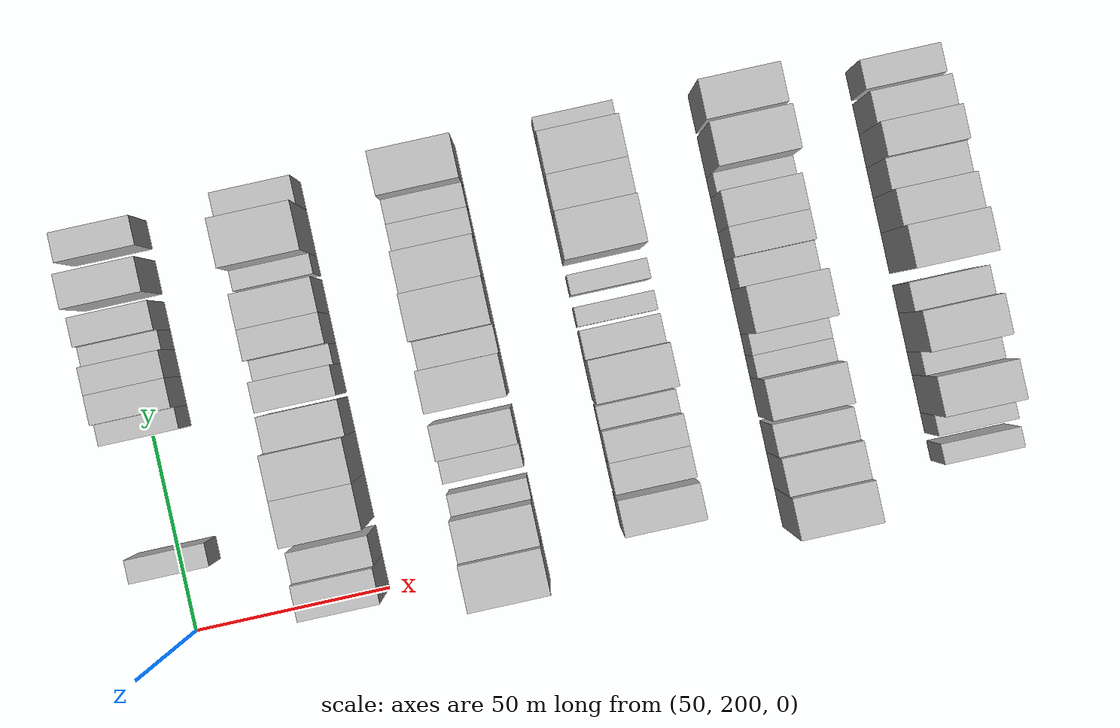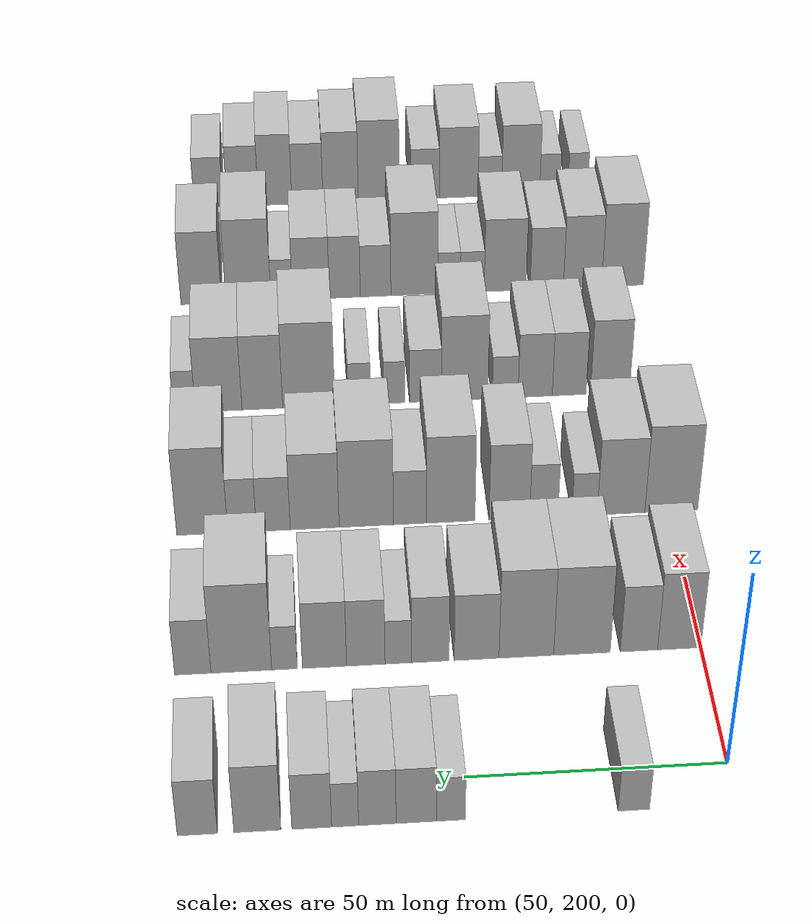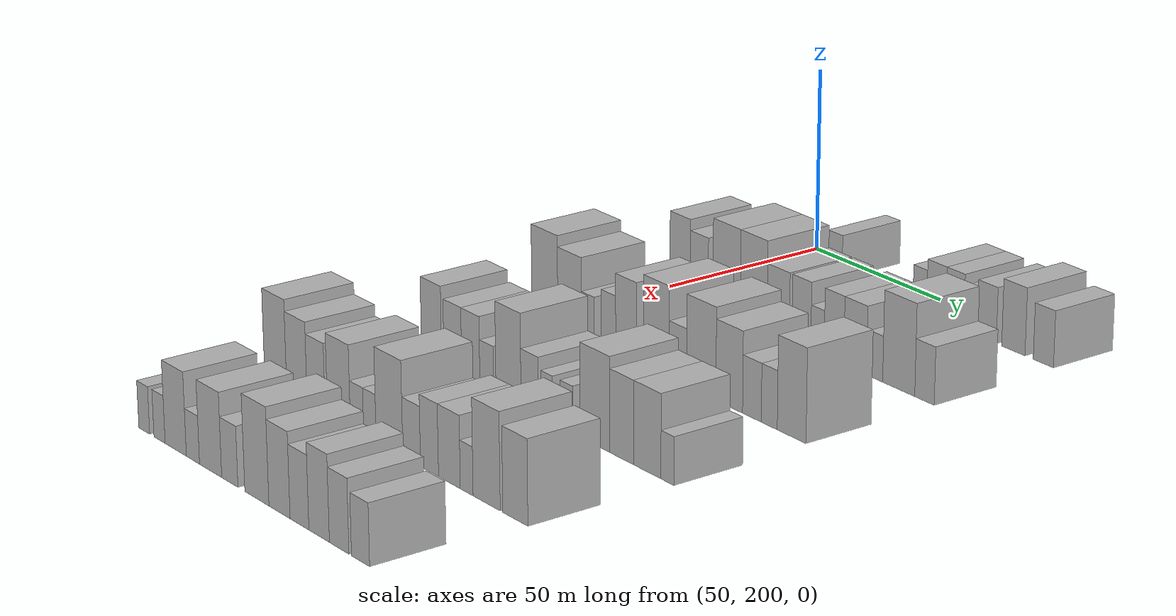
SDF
<sdf version="1.6">
 <world name="default">
  <model name="building_96">
   <static>1</static>
   <pose>50.0000 219.3409 0 0.000000 0.000000 0.000000</pose>
   <link name="link">
    <pose>0 0 6.00 0 0 0</pose>
    <collision name="collision"><geometry><box><size>20.0000 5.8726 12.0000</size></box></geometry></collision>
    <visual name="visual">
     <cast_shadows>0</cast_shadows>
     <geometry><box><size>20.0000 5.8726 12.0000</size></box></geometry>
     <material>
      <script>
       <uri>model://HANNAS_wall/materials/scripts</uri>
       <uri>model://HANNAS_wall/materials/textures</uri>
       <name>vrc/HANNAS_wall</name>
      </script>
     </material>
    </visual>
   </link>
  </model>
  <model name="building_97">
   <static>1</static>
   <pose>50.0000 253.3255 0 0.000000 0.000000 0.000000</pose>
   <link name="link">
    <pose>0 0 6.00 0 0 0</pose>
    <collision name="collision"><geometry><box><size>20.0000 5.3655 12.0000</size></box></geometry></collision>
    <visual name="visual">
     <cast_shadows>0</cast_shadows>
     <geometry><box><size>20.0000 5.3655 12.0000</size></box></geometry>
     <material>
      <script>
       <uri>model://HANNAS_wall/materials/scripts</uri>
       <uri>model://HANNAS_wall/materials/textures</uri>
       <name>vrc/HANNAS_wall</name>
      </script>
     </material>
    </visual>
   </link>
  </model>
  <model name="building_98">
   <static>1</static>
   <pose>50.0000 259.7184 0 0.000000 0.000000 0.000000</pose>
   <link name="link">
    <pose>0 0 7.50 0 0 0</pose>
    <collision name="collision"><geometry><box><size>20.0000 7.4203 15.0000</size></box></geometry></collision>
    <visual name="visual">
     <cast_shadows>0</cast_shadows>
     <geometry><box><size>20.0000 7.4203 15.0000</size></box></geometry>
     <material>
      <script>
       <uri>model://HANNAS_wall/materials/scripts</uri>
       <uri>model://HANNAS_wall/materials/textures</uri>
       <name>vrc/HANNAS_wall</name>
      </script>
     </material>
    </visual>
   </link>
  </model>
  <model name="building_99">
   <static>1</static>
   <pose>50.0000 266.8720 0 0.000000 0.000000 0.000000</pose>
   <link name="link">
    <pose>0 0 7.50 0 0 0</pose>
    <collision name="collision"><geometry><box><size>20.0000 6.8869 15.0000</size></box></geometry></collision>
    <visual name="visual">
     <cast_shadows>0</cast_shadows>
     <geometry><box><size>20.0000 6.8869 15.0000</size></box></geometry>
     <material>
      <script>
       <uri>model://HANNAS_wall/materials/scripts</uri>
       <uri>model://HANNAS_wall/materials/textures</uri>
       <name>vrc/HANNAS_wall</name>
      </script>
     </material>
    </visual>
   </link>
  </model>
  <model name="building_100">
   <static>1</static>
   <pose>50.0000 272.8001 0 0.000000 0.000000 0.000000</pose>
   <link name="link">
    <pose>0 0 6.00 0 0 0</pose>
    <collision name="collision"><geometry><box><size>20.0000 4.9694 12.0000</size></box></geometry></collision>
    <visual name="visual">
     <cast_shadows>0</cast_shadows>
     <geometry><box><size>20.0000 4.9694 12.0000</size></box></geometry>
     <material>
      <script>
       <uri>model://HANNAS_wall/materials/scripts</uri>
       <uri>model://HANNAS_wall/materials/textures</uri>
       <name>vrc/HANNAS_wall</name>
      </script>
     </material>
    </visual>
   </link>
  </model>
  <model name="building_101">
   <static>1</static>
   <pose>50.0000 278.9315 0 0.000000 0.000000 0.000000</pose>
   <link name="link">
    <pose>0 0 7.50 0 0 0</pose>
    <collision name="collision"><geometry><box><size>20.0000 7.2933 15.0000</size></box></geometry></collision>
    <visual name="visual">
     <cast_shadows>0</cast_shadows>
     <geometry><box><size>20.0000 7.2933 15.0000</size></box></geometry>
     <material>
      <script>
       <uri>model://HANNAS_wall/materials/scripts</uri>
       <uri>model://HANNAS_wall/materials/textures</uri>
       <name>vrc/HANNAS_wall</name>
      </script>
     </material>
    </visual>
   </link>
  </model>
  <model name="building_102">
   <static>1</static>
   <pose>50.0000 288.8823 0 0.000000 0.000000 0.000000</pose>
   <link name="link">
    <pose>0 0 9.00 0 0 0</pose>
    <collision name="collision"><geometry><box><size>20.0000 8.6085 18.0000</size></box></geometry></collision>
    <visual name="visual">
     <cast_shadows>0</cast_shadows>
     <geometry><box><size>20.0000 8.6085 18.0000</size></box></geometry>
     <material>
      <script>
       <uri>model://HANNAS_wall/materials/scripts</uri>
       <uri>model://HANNAS_wall/materials/textures</uri>
       <name>vrc/HANNAS_wall</name>
      </script>
     </material>
    </visual>
   </link>
  </model>
  <model name="building_103">
   <static>1</static>
   <pose>50.0000 299.8612 0 0.000000 0.000000 0.000000</pose>
   <link name="link">
    <pose>0 0 7.50 0 0 0</pose>
    <collision name="collision"><geometry><box><size>20.0000 7.3493 15.0000</size></box></geometry></collision>
    <visual name="visual">
     <cast_shadows>0</cast_shadows>
     <geometry><box><size>20.0000 7.3493 15.0000</size></box></geometry>
     <material>
      <script>
       <uri>model://HANNAS_wall/materials/scripts</uri>
       <uri>model://HANNAS_wall/materials/textures</uri>
       <name>vrc/HANNAS_wall</name>
      </script>
     </material>
    </visual>
   </link>
  </model>
  <model name="building_219">
   <static>1</static>
   <pose>90.0000 204.3901 0 0.000000 0.000000 0.000000</pose>
   <link name="link">
    <pose>0 0 10.50 0 0 0</pose>
    <collision name="collision"><geometry><box><size>20.0000 8.6976 21.0000</size></box></geometry></collision>
    <visual name="visual">
     <cast_shadows>0</cast_shadows>
     <geometry><box><size>20.0000 8.6976 21.0000</size></box></geometry>
     <material>
      <script>
       <uri>model://HANNAS_wall/materials/scripts</uri>
       <uri>model://HANNAS_wall/materials/textures</uri>
       <name>vrc/HANNAS_wall</name>
      </script>
     </material>
    </visual>
   </link>
  </model>
  <model name="building_220">
   <static>1</static>
   <pose>90.0000 212.4916 0 0.000000 0.000000 0.000000</pose>
   <link name="link">
    <pose>0 0 9.00 0 0 0</pose>
    <collision name="collision"><geometry><box><size>20.0000 7.5054 18.0000</size></box></geometry></collision>
    <visual name="visual">
     <cast_shadows>0</cast_shadows>
     <geometry><box><size>20.0000 7.5054 18.0000</size></box></geometry>
     <material>
      <script>
       <uri>model://HANNAS_wall/materials/scripts</uri>
       <uri>model://HANNAS_wall/materials/textures</uri>
       <name>vrc/HANNAS_wall</name>
      </script>
     </material>
    </visual>
   </link>
  </model>
  <model name="building_221">
   <static>1</static>
   <pose>90.0000 223.9119 0 0.000000 0.000000 0.000000</pose>
   <link name="link">
    <pose>0 0 12.00 0 0 0</pose>
    <collision name="collision"><geometry><box><size>20.0000 11.3351 24.0000</size></box></geometry></collision>
    <visual name="visual">
     <cast_shadows>0</cast_shadows>
     <geometry><box><size>20.0000 11.3351 24.0000</size></box></geometry>
     <material>
      <script>
       <uri>model://HANNAS_wall/materials/scripts</uri>
       <uri>model://HANNAS_wall/materials/textures</uri>
       <name>vrc/HANNAS_wall</name>
      </script>
     </material>
    </visual>
   </link>
  </model>
  <model name="building_222">
   <static>1</static>
   <pose>90.0000 235.0349 0 0.000000 0.000000 0.000000</pose>
   <link name="link">
    <pose>0 0 12.00 0 0 0</pose>
    <collision name="collision"><geometry><box><size>20.0000 10.9110 24.0000</size></box></geometry></collision>
    <visual name="visual">
     <cast_shadows>0</cast_shadows>
     <geometry><box><size>20.0000 10.9110 24.0000</size></box></geometry>
     <material>
      <script>
       <uri>model://HANNAS_wall/materials/scripts</uri>
       <uri>model://HANNAS_wall/materials/textures</uri>
       <name>vrc/HANNAS_wall</name>
      </script>
     </material>
    </visual>
   </link>
  </model>
  <model name="building_223">
   <static>1</static>
   <pose>90.0000 244.9516 0 0.000000 0.000000 0.000000</pose>
   <link name="link">
    <pose>0 0 9.00 0 0 0</pose>
    <collision name="collision"><geometry><box><size>20.0000 8.9223 18.0000</size></box></geometry></collision>
    <visual name="visual">
     <cast_shadows>0</cast_shadows>
     <geometry><box><size>20.0000 8.9223 18.0000</size></box></geometry>
     <material>
      <script>
       <uri>model://HANNAS_wall/materials/scripts</uri>
       <uri>model://HANNAS_wall/materials/textures</uri>
       <name>vrc/HANNAS_wall</name>
      </script>
     </material>
    </visual>
   </link>
  </model>
  <model name="building_224">
   <static>1</static>
   <pose>90.0000 254.1585 0 0.000000 0.000000 0.000000</pose>
   <link name="link">
    <pose>0 0 9.00 0 0 0</pose>
    <collision name="collision"><geometry><box><size>20.0000 7.4916 18.0000</size></box></geometry></collision>
    <visual name="visual">
     <cast_shadows>0</cast_shadows>
     <geometry><box><size>20.0000 7.4916 18.0000</size></box></geometry>
     <material>
      <script>
       <uri>model://HANNAS_wall/materials/scripts</uri>
       <uri>model://HANNAS_wall/materials/textures</uri>
       <name>vrc/HANNAS_wall</name>
      </script>
     </material>
    </visual>
   </link>
  </model>
  <model name="building_225">
   <static>1</static>
   <pose>90.0000 260.5161 0 0.000000 0.000000 0.000000</pose>
   <link name="link">
    <pose>0 0 6.00 0 0 0</pose>
    <collision name="collision"><geometry><box><size>20.0000 5.2235 12.0000</size></box></geometry></collision>
    <visual name="visual">
     <cast_shadows>0</cast_shadows>
     <geometry><box><size>20.0000 5.2235 12.0000</size></box></geometry>
     <material>
      <script>
       <uri>model://HANNAS_wall/materials/scripts</uri>
       <uri>model://HANNAS_wall/materials/textures</uri>
       <name>vrc/HANNAS_wall</name>
      </script>
     </material>
    </visual>
   </link>
  </model>
  <model name="building_226">
   <static>1</static>
   <pose>90.0000 266.9338 0 0.000000 0.000000 0.000000</pose>
   <link name="link">
    <pose>0 0 9.00 0 0 0</pose>
    <collision name="collision"><geometry><box><size>20.0000 7.6119 18.0000</size></box></geometry></collision>
    <visual name="visual">
     <cast_shadows>0</cast_shadows>
     <geometry><box><size>20.0000 7.6119 18.0000</size></box></geometry>
     <material>
      <script>
       <uri>model://HANNAS_wall/materials/scripts</uri>
       <uri>model://HANNAS_wall/materials/textures</uri>
       <name>vrc/HANNAS_wall</name>
      </script>
     </material>
    </visual>
   </link>
  </model>
  <model name="building_227">
   <static>1</static>
   <pose>90.0000 275.0968 0 0.000000 0.000000 0.000000</pose>
   <link name="link">
    <pose>0 0 9.00 0 0 0</pose>
    <collision name="collision"><geometry><box><size>20.0000 8.7142 18.0000</size></box></geometry></collision>
    <visual name="visual">
     <cast_shadows>0</cast_shadows>
     <geometry><box><size>20.0000 8.7142 18.0000</size></box></geometry>
     <material>
      <script>
       <uri>model://HANNAS_wall/materials/scripts</uri>
       <uri>model://HANNAS_wall/materials/textures</uri>
       <name>vrc/HANNAS_wall</name>
      </script>
     </material>
    </visual>
   </link>
  </model>
  <model name="building_228">
   <static>1</static>
   <pose>90.0000 282.9886 0 0.000000 0.000000 0.000000</pose>
   <link name="link">
    <pose>0 0 6.00 0 0 0</pose>
    <collision name="collision"><geometry><box><size>20.0000 5.0693 12.0000</size></box></geometry></collision>
    <visual name="visual">
     <cast_shadows>0</cast_shadows>
     <geometry><box><size>20.0000 5.0693 12.0000</size></box></geometry>
     <material>
      <script>
       <uri>model://HANNAS_wall/materials/scripts</uri>
       <uri>model://HANNAS_wall/materials/textures</uri>
       <name>vrc/HANNAS_wall</name>
      </script>
     </material>
    </visual>
   </link>
  </model>
  <model name="building_229">
   <static>1</static>
   <pose>90.0000 291.4970 0 0.000000 0.000000 0.000000</pose>
   <link name="link">
    <pose>0 0 12.00 0 0 0</pose>
    <collision name="collision"><geometry><box><size>20.0000 11.9476 24.0000</size></box></geometry></collision>
    <visual name="visual">
     <cast_shadows>0</cast_shadows>
     <geometry><box><size>20.0000 11.9476 24.0000</size></box></geometry>
     <material>
      <script>
       <uri>model://HANNAS_wall/materials/scripts</uri>
       <uri>model://HANNAS_wall/materials/textures</uri>
       <name>vrc/HANNAS_wall</name>
      </script>
     </material>
    </visual>
   </link>
  </model>
  <model name="building_230">
   <static>1</static>
   <pose>90.0000 301.0344 0 0.000000 0.000000 0.000000</pose>
   <link name="link">
    <pose>0 0 7.50 0 0 0</pose>
    <collision name="collision"><geometry><box><size>20.0000 7.1272 15.0000</size></box></geometry></collision>
    <visual name="visual">
     <cast_shadows>0</cast_shadows>
     <geometry><box><size>20.0000 7.1272 15.0000</size></box></geometry>
     <material>
      <script>
       <uri>model://HANNAS_wall/materials/scripts</uri>
       <uri>model://HANNAS_wall/materials/textures</uri>
       <name>vrc/HANNAS_wall</name>
      </script>
     </material>
    </visual>
   </link>
  </model>
  <model name="building_356">
   <static>1</static>
   <pose>130.0000 199.6212 0 0.000000 0.000000 0.000000</pose>
   <link name="link">
    <pose>0 0 12.00 0 0 0</pose>
    <collision name="collision"><geometry><box><size>20.0000 11.3811 24.0000</size></box></geometry></collision>
    <visual name="visual">
     <cast_shadows>0</cast_shadows>
     <geometry><box><size>20.0000 11.3811 24.0000</size></box></geometry>
     <material>
      <script>
       <uri>model://HANNAS_wall/materials/scripts</uri>
       <uri>model://HANNAS_wall/materials/textures</uri>
       <name>vrc/HANNAS_wall</name>
      </script>
     </material>
    </visual>
   </link>
  </model>
  <model name="building_357">
   <static>1</static>
   <pose>130.0000 210.4302 0 0.000000 0.000000 0.000000</pose>
   <link name="link">
    <pose>0 0 10.50 0 0 0</pose>
    <collision name="collision"><geometry><box><size>20.0000 10.2369 21.0000</size></box></geometry></collision>
    <visual name="visual">
     <cast_shadows>0</cast_shadows>
     <geometry><box><size>20.0000 10.2369 21.0000</size></box></geometry>
     <material>
      <script>
       <uri>model://HANNAS_wall/materials/scripts</uri>
       <uri>model://HANNAS_wall/materials/textures</uri>
       <name>vrc/HANNAS_wall</name>
      </script>
     </material>
    </visual>
   </link>
  </model>
  <model name="building_358">
   <static>1</static>
   <pose>130.0000 218.2575 0 0.000000 0.000000 0.000000</pose>
   <link name="link">
    <pose>0 0 6.00 0 0 0</pose>
    <collision name="collision"><geometry><box><size>20.0000 5.4177 12.0000</size></box></geometry></collision>
    <visual name="visual">
     <cast_shadows>0</cast_shadows>
     <geometry><box><size>20.0000 5.4177 12.0000</size></box></geometry>
     <material>
      <script>
       <uri>model://HANNAS_wall/materials/scripts</uri>
       <uri>model://HANNAS_wall/materials/textures</uri>
       <name>vrc/HANNAS_wall</name>
      </script>
     </material>
    </visual>
   </link>
  </model>
  <model name="building_359">
   <static>1</static>
   <pose>130.0000 226.9851 0 0.000000 0.000000 0.000000</pose>
   <link name="link">
    <pose>0 0 7.50 0 0 0</pose>
    <collision name="collision"><geometry><box><size>20.0000 6.0375 15.0000</size></box></geometry></collision>
    <visual name="visual">
     <cast_shadows>0</cast_shadows>
     <geometry><box><size>20.0000 6.0375 15.0000</size></box></geometry>
     <material>
      <script>
       <uri>model://HANNAS_wall/materials/scripts</uri>
       <uri>model://HANNAS_wall/materials/textures</uri>
       <name>vrc/HANNAS_wall</name>
      </script>
     </material>
    </visual>
   </link>
  </model>
  <model name="building_360">
   <static>1</static>
   <pose>130.0000 234.3421 0 0.000000 0.000000 0.000000</pose>
   <link name="link">
    <pose>0 0 10.50 0 0 0</pose>
    <collision name="collision"><geometry><box><size>20.0000 8.6765 21.0000</size></box></geometry></collision>
    <visual name="visual">
     <cast_shadows>0</cast_shadows>
     <geometry><box><size>20.0000 8.6765 21.0000</size></box></geometry>
     <material>
      <script>
       <uri>model://HANNAS_wall/materials/scripts</uri>
       <uri>model://HANNAS_wall/materials/textures</uri>
       <name>vrc/HANNAS_wall</name>
      </script>
     </material>
    </visual>
   </link>
  </model>
  <model name="building_361">
   <static>1</static>
   <pose>130.0000 246.8200 0 0.000000 0.000000 0.000000</pose>
   <link name="link">
    <pose>0 0 12.00 0 0 0</pose>
    <collision name="collision"><geometry><box><size>20.0000 10.2795 24.0000</size></box></geometry></collision>
    <visual name="visual">
     <cast_shadows>0</cast_shadows>
     <geometry><box><size>20.0000 10.2795 24.0000</size></box></geometry>
     <material>
      <script>
       <uri>model://HANNAS_wall/materials/scripts</uri>
       <uri>model://HANNAS_wall/materials/textures</uri>
       <name>vrc/HANNAS_wall</name>
      </script>
     </material>
    </visual>
   </link>
  </model>
  <model name="building_362">
   <static>1</static>
   <pose>130.0000 255.4811 0 0.000000 0.000000 0.000000</pose>
   <link name="link">
    <pose>0 0 7.50 0 0 0</pose>
    <collision name="collision"><geometry><box><size>20.0000 7.0426 15.0000</size></box></geometry></collision>
    <visual name="visual">
     <cast_shadows>0</cast_shadows>
     <geometry><box><size>20.0000 7.0426 15.0000</size></box></geometry>
     <material>
      <script>
       <uri>model://HANNAS_wall/materials/scripts</uri>
       <uri>model://HANNAS_wall/materials/textures</uri>
       <name>vrc/HANNAS_wall</name>
      </script>
     </material>
    </visual>
   </link>
  </model>
  <model name="building_363">
   <static>1</static>
   <pose>130.0000 264.7600 0 0.000000 0.000000 0.000000</pose>
   <link name="link">
    <pose>0 0 12.00 0 0 0</pose>
    <collision name="collision"><geometry><box><size>20.0000 11.5152 24.0000</size></box></geometry></collision>
    <visual name="visual">
     <cast_shadows>0</cast_shadows>
     <geometry><box><size>20.0000 11.5152 24.0000</size></box></geometry>
     <material>
      <script>
       <uri>model://HANNAS_wall/materials/scripts</uri>
       <uri>model://HANNAS_wall/materials/textures</uri>
       <name>vrc/HANNAS_wall</name>
      </script>
     </material>
    </visual>
   </link>
  </model>
  <model name="building_364">
   <static>1</static>
   <pose>130.0000 275.6868 0 0.000000 0.000000 0.000000</pose>
   <link name="link">
    <pose>0 0 10.50 0 0 0</pose>
    <collision name="collision"><geometry><box><size>20.0000 10.3384 21.0000</size></box></geometry></collision>
    <visual name="visual">
     <cast_shadows>0</cast_shadows>
     <geometry><box><size>20.0000 10.3384 21.0000</size></box></geometry>
     <material>
      <script>
       <uri>model://HANNAS_wall/materials/scripts</uri>
       <uri>model://HANNAS_wall/materials/textures</uri>
       <name>vrc/HANNAS_wall</name>
      </script>
     </material>
    </visual>
   </link>
  </model>
  <model name="building_365">
   <static>1</static>
   <pose>130.0000 284.4294 0 0.000000 0.000000 0.000000</pose>
   <link name="link">
    <pose>0 0 7.50 0 0 0</pose>
    <collision name="collision"><geometry><box><size>20.0000 7.1469 15.0000</size></box></geometry></collision>
    <visual name="visual">
     <cast_shadows>0</cast_shadows>
     <geometry><box><size>20.0000 7.1469 15.0000</size></box></geometry>
     <material>
      <script>
       <uri>model://HANNAS_wall/materials/scripts</uri>
       <uri>model://HANNAS_wall/materials/textures</uri>
       <name>vrc/HANNAS_wall</name>
      </script>
     </material>
    </visual>
   </link>
  </model>
  <model name="building_366">
   <static>1</static>
   <pose>130.0000 291.0216 0 0.000000 0.000000 0.000000</pose>
   <link name="link">
    <pose>0 0 7.50 0 0 0</pose>
    <collision name="collision"><geometry><box><size>20.0000 6.0375 15.0000</size></box></geometry></collision>
    <visual name="visual">
     <cast_shadows>0</cast_shadows>
     <geometry><box><size>20.0000 6.0375 15.0000</size></box></geometry>
     <material>
      <script>
       <uri>model://HANNAS_wall/materials/scripts</uri>
       <uri>model://HANNAS_wall/materials/textures</uri>
       <name>vrc/HANNAS_wall</name>
      </script>
     </material>
    </visual>
   </link>
  </model>
  <model name="building_367">
   <static>1</static>
   <pose>130.0000 299.3933 0 0.000000 0.000000 0.000000</pose>
   <link name="link">
    <pose>0 0 12.00 0 0 0</pose>
    <collision name="collision"><geometry><box><size>20.0000 10.7058 24.0000</size></box></geometry></collision>
    <visual name="visual">
     <cast_shadows>0</cast_shadows>
     <geometry><box><size>20.0000 10.7058 24.0000</size></box></geometry>
     <material>
      <script>
       <uri>model://HANNAS_wall/materials/scripts</uri>
       <uri>model://HANNAS_wall/materials/textures</uri>
       <name>vrc/HANNAS_wall</name>
      </script>
     </material>
    </visual>
   </link>
  </model>
  <model name="building_497">
   <static>1</static>
   <pose>170.0000 207.3071 0 0.000000 0.000000 0.000000</pose>
   <link name="link">
    <pose>0 0 10.50 0 0 0</pose>
    <collision name="collision"><geometry><box><size>20.0000 8.9375 21.0000</size></box></geometry></collision>
    <visual name="visual">
     <cast_shadows>0</cast_shadows>
     <geometry><box><size>20.0000 8.9375 21.0000</size></box></geometry>
     <material>
      <script>
       <uri>model://HANNAS_wall/materials/scripts</uri>
       <uri>model://HANNAS_wall/materials/textures</uri>
       <name>vrc/HANNAS_wall</name>
      </script>
     </material>
    </visual>
   </link>
  </model>
  <model name="building_498">
   <static>1</static>
   <pose>170.0000 216.6389 0 0.000000 0.000000 0.000000</pose>
   <link name="link">
    <pose>0 0 9.00 0 0 0</pose>
    <collision name="collision"><geometry><box><size>20.0000 7.7262 18.0000</size></box></geometry></collision>
    <visual name="visual">
     <cast_shadows>0</cast_shadows>
     <geometry><box><size>20.0000 7.7262 18.0000</size></box></geometry>
     <material>
      <script>
       <uri>model://HANNAS_wall/materials/scripts</uri>
       <uri>model://HANNAS_wall/materials/textures</uri>
       <name>vrc/HANNAS_wall</name>
      </script>
     </material>
    </visual>
   </link>
  </model>
  <model name="building_499">
   <static>1</static>
   <pose>170.0000 224.3989 0 0.000000 0.000000 0.000000</pose>
   <link name="link">
    <pose>0 0 9.00 0 0 0</pose>
    <collision name="collision"><geometry><box><size>20.0000 7.7938 18.0000</size></box></geometry></collision>
    <visual name="visual">
     <cast_shadows>0</cast_shadows>
     <geometry><box><size>20.0000 7.7938 18.0000</size></box></geometry>
     <material>
      <script>
       <uri>model://HANNAS_wall/materials/scripts</uri>
       <uri>model://HANNAS_wall/materials/textures</uri>
       <name>vrc/HANNAS_wall</name>
      </script>
     </material>
    </visual>
   </link>
  </model>
  <model name="building_500">
   <static>1</static>
   <pose>170.0000 231.2301 0 0.000000 0.000000 0.000000</pose>
   <link name="link">
    <pose>0 0 6.00 0 0 0</pose>
    <collision name="collision"><geometry><box><size>20.0000 5.8686 12.0000</size></box></geometry></collision>
    <visual name="visual">
     <cast_shadows>0</cast_shadows>
     <geometry><box><size>20.0000 5.8686 12.0000</size></box></geometry>
     <material>
      <script>
       <uri>model://HANNAS_wall/materials/scripts</uri>
       <uri>model://HANNAS_wall/materials/textures</uri>
       <name>vrc/HANNAS_wall</name>
      </script>
     </material>
    </visual>
   </link>
  </model>
  <model name="building_501">
   <static>1</static>
   <pose>170.0000 240.4291 0 0.000000 0.000000 0.000000</pose>
   <link name="link">
    <pose>0 0 12.00 0 0 0</pose>
    <collision name="collision"><geometry><box><size>20.0000 10.5295 24.0000</size></box></geometry></collision>
    <visual name="visual">
     <cast_shadows>0</cast_shadows>
     <geometry><box><size>20.0000 10.5295 24.0000</size></box></geometry>
     <material>
      <script>
       <uri>model://HANNAS_wall/materials/scripts</uri>
       <uri>model://HANNAS_wall/materials/textures</uri>
       <name>vrc/HANNAS_wall</name>
      </script>
     </material>
    </visual>
   </link>
  </model>
  <model name="building_502">
   <static>1</static>
   <pose>170.0000 249.3010 0 0.000000 0.000000 0.000000</pose>
   <link name="link">
    <pose>0 0 7.50 0 0 0</pose>
    <collision name="collision"><geometry><box><size>20.0000 7.2142 15.0000</size></box></geometry></collision>
    <visual name="visual">
     <cast_shadows>0</cast_shadows>
     <geometry><box><size>20.0000 7.2142 15.0000</size></box></geometry>
     <material>
      <script>
       <uri>model://HANNAS_wall/materials/scripts</uri>
       <uri>model://HANNAS_wall/materials/textures</uri>
       <name>vrc/HANNAS_wall</name>
      </script>
     </material>
    </visual>
   </link>
  </model>
  <model name="building_503">
   <static>1</static>
   <pose>170.0000 256.3191 0 0.000000 0.000000 0.000000</pose>
   <link name="link">
    <pose>0 0 6.00 0 0 0</pose>
    <collision name="collision"><geometry><box><size>20.0000 4.8221 12.0000</size></box></geometry></collision>
    <visual name="visual">
     <cast_shadows>0</cast_shadows>
     <geometry><box><size>20.0000 4.8221 12.0000</size></box></geometry>
     <material>
      <script>
       <uri>model://HANNAS_wall/materials/scripts</uri>
       <uri>model://HANNAS_wall/materials/textures</uri>
       <name>vrc/HANNAS_wall</name>
      </script>
     </material>
    </visual>
   </link>
  </model>
  <model name="building_504">
   <static>1</static>
   <pose>170.0000 264.2632 0 0.000000 0.000000 0.000000</pose>
   <link name="link">
    <pose>0 0 6.00 0 0 0</pose>
    <collision name="collision"><geometry><box><size>20.0000 5.0660 12.0000</size></box></geometry></collision>
    <visual name="visual">
     <cast_shadows>0</cast_shadows>
     <geometry><box><size>20.0000 5.0660 12.0000</size></box></geometry>
     <material>
      <script>
       <uri>model://HANNAS_wall/materials/scripts</uri>
       <uri>model://HANNAS_wall/materials/textures</uri>
       <name>vrc/HANNAS_wall</name>
      </script>
     </material>
    </visual>
   </link>
  </model>
  <model name="building_505">
   <static>1</static>
   <pose>170.0000 275.6670 0 0.000000 0.000000 0.000000</pose>
   <link name="link">
    <pose>0 0 12.00 0 0 0</pose>
    <collision name="collision"><geometry><box><size>20.0000 11.7416 24.0000</size></box></geometry></collision>
    <visual name="visual">
     <cast_shadows>0</cast_shadows>
     <geometry><box><size>20.0000 11.7416 24.0000</size></box></geometry>
     <material>
      <script>
       <uri>model://HANNAS_wall/materials/scripts</uri>
       <uri>model://HANNAS_wall/materials/textures</uri>
       <name>vrc/HANNAS_wall</name>
      </script>
     </material>
    </visual>
   </link>
  </model>
  <model name="building_506">
   <static>1</static>
   <pose>170.0000 286.1183 0 0.000000 0.000000 0.000000</pose>
   <link name="link">
    <pose>0 0 10.50 0 0 0</pose>
    <collision name="collision"><geometry><box><size>20.0000 9.1610 21.0000</size></box></geometry></collision>
    <visual name="visual">
     <cast_shadows>0</cast_shadows>
     <geometry><box><size>20.0000 9.1610 21.0000</size></box></geometry>
     <material>
      <script>
       <uri>model://HANNAS_wall/materials/scripts</uri>
       <uri>model://HANNAS_wall/materials/textures</uri>
       <name>vrc/HANNAS_wall</name>
      </script>
     </material>
    </visual>
   </link>
  </model>
  <model name="building_507">
   <static>1</static>
   <pose>170.0000 295.9259 0 0.000000 0.000000 0.000000</pose>
   <link name="link">
    <pose>0 0 10.50 0 0 0</pose>
    <collision name="collision"><geometry><box><size>20.0000 10.4542 21.0000</size></box></geometry></collision>
    <visual name="visual">
     <cast_shadows>0</cast_shadows>
     <geometry><box><size>20.0000 10.4542 21.0000</size></box></geometry>
     <material>
      <script>
       <uri>model://HANNAS_wall/materials/scripts</uri>
       <uri>model://HANNAS_wall/materials/textures</uri>
       <name>vrc/HANNAS_wall</name>
      </script>
     </material>
    </visual>
   </link>
  </model>
  <model name="building_508">
   <static>1</static>
   <pose>170.0000 303.5964 0 0.000000 0.000000 0.000000</pose>
   <link name="link">
    <pose>0 0 6.00 0 0 0</pose>
    <collision name="collision"><geometry><box><size>20.0000 4.8868 12.0000</size></box></geometry></collision>
    <visual name="visual">
     <cast_shadows>0</cast_shadows>
     <geometry><box><size>20.0000 4.8868 12.0000</size></box></geometry>
     <material>
      <script>
       <uri>model://HANNAS_wall/materials/scripts</uri>
       <uri>model://HANNAS_wall/materials/textures</uri>
       <name>vrc/HANNAS_wall</name>
      </script>
     </material>
    </visual>
   </link>
  </model>
  <model name="building_639">
   <static>1</static>
   <pose>210.0000 198.7658 0 0.000000 0.000000 0.000000</pose>
   <link name="link">
    <pose>0 0 12.00 0 0 0</pose>
    <collision name="collision"><geometry><box><size>20.0000 10.1320 24.0000</size></box></geometry></collision>
    <visual name="visual">
     <cast_shadows>0</cast_shadows>
     <geometry><box><size>20.0000 10.1320 24.0000</size></box></geometry>
     <material>
      <script>
       <uri>model://HANNAS_wall/materials/scripts</uri>
       <uri>model://HANNAS_wall/materials/textures</uri>
       <name>vrc/HANNAS_wall</name>
      </script>
     </material>
    </visual>
   </link>
  </model>
  <model name="building_640">
   <static>1</static>
   <pose>210.0000 208.4682 0 0.000000 0.000000 0.000000</pose>
   <link name="link">
    <pose>0 0 10.50 0 0 0</pose>
    <collision name="collision"><geometry><box><size>20.0000 9.2728 21.0000</size></box></geometry></collision>
    <visual name="visual">
     <cast_shadows>0</cast_shadows>
     <geometry><box><size>20.0000 9.2728 21.0000</size></box></geometry>
     <material>
      <script>
       <uri>model://HANNAS_wall/materials/scripts</uri>
       <uri>model://HANNAS_wall/materials/textures</uri>
       <name>vrc/HANNAS_wall</name>
      </script>
     </material>
    </visual>
   </link>
  </model>
  <model name="building_641">
   <static>1</static>
   <pose>210.0000 217.1392 0 0.000000 0.000000 0.000000</pose>
   <link name="link">
    <pose>0 0 9.00 0 0 0</pose>
    <collision name="collision"><geometry><box><size>20.0000 8.0692 18.0000</size></box></geometry></collision>
    <visual name="visual">
     <cast_shadows>0</cast_shadows>
     <geometry><box><size>20.0000 8.0692 18.0000</size></box></geometry>
     <material>
      <script>
       <uri>model://HANNAS_wall/materials/scripts</uri>
       <uri>model://HANNAS_wall/materials/textures</uri>
       <name>vrc/HANNAS_wall</name>
      </script>
     </material>
    </visual>
   </link>
  </model>
  <model name="building_642">
   <static>1</static>
   <pose>210.0000 227.2211 0 0.000000 0.000000 0.000000</pose>
   <link name="link">
    <pose>0 0 10.50 0 0 0</pose>
    <collision name="collision"><geometry><box><size>20.0000 10.0947 21.0000</size></box></geometry></collision>
    <visual name="visual">
     <cast_shadows>0</cast_shadows>
     <geometry><box><size>20.0000 10.0947 21.0000</size></box></geometry>
     <material>
      <script>
       <uri>model://HANNAS_wall/materials/scripts</uri>
       <uri>model://HANNAS_wall/materials/textures</uri>
       <name>vrc/HANNAS_wall</name>
      </script>
     </material>
    </visual>
   </link>
  </model>
  <model name="building_643">
   <static>1</static>
   <pose>210.0000 235.1389 0 0.000000 0.000000 0.000000</pose>
   <link name="link">
    <pose>0 0 6.00 0 0 0</pose>
    <collision name="collision"><geometry><box><size>20.0000 5.7409 12.0000</size></box></geometry></collision>
    <visual name="visual">
     <cast_shadows>0</cast_shadows>
     <geometry><box><size>20.0000 5.7409 12.0000</size></box></geometry>
     <material>
      <script>
       <uri>model://HANNAS_wall/materials/scripts</uri>
       <uri>model://HANNAS_wall/materials/textures</uri>
       <name>vrc/HANNAS_wall</name>
      </script>
     </material>
    </visual>
   </link>
  </model>
  <model name="building_644">
   <static>1</static>
   <pose>210.0000 240.7044 0 0.000000 0.000000 0.000000</pose>
   <link name="link">
    <pose>0 0 6.00 0 0 0</pose>
    <collision name="collision"><geometry><box><size>20.0000 5.3901 12.0000</size></box></geometry></collision>
    <visual name="visual">
     <cast_shadows>0</cast_shadows>
     <geometry><box><size>20.0000 5.3901 12.0000</size></box></geometry>
     <material>
      <script>
       <uri>model://HANNAS_wall/materials/scripts</uri>
       <uri>model://HANNAS_wall/materials/textures</uri>
       <name>vrc/HANNAS_wall</name>
      </script>
     </material>
    </visual>
   </link>
  </model>
  <model name="building_645">
   <static>1</static>
   <pose>210.0000 249.0583 0 0.000000 0.000000 0.000000</pose>
   <link name="link">
    <pose>0 0 12.00 0 0 0</pose>
    <collision name="collision"><geometry><box><size>20.0000 11.3177 24.0000</size></box></geometry></collision>
    <visual name="visual">
     <cast_shadows>0</cast_shadows>
     <geometry><box><size>20.0000 11.3177 24.0000</size></box></geometry>
     <material>
      <script>
       <uri>model://HANNAS_wall/materials/scripts</uri>
       <uri>model://HANNAS_wall/materials/textures</uri>
       <name>vrc/HANNAS_wall</name>
      </script>
     </material>
    </visual>
   </link>
  </model>
  <model name="building_646">
   <static>1</static>
   <pose>210.0000 258.4057 0 0.000000 0.000000 0.000000</pose>
   <link name="link">
    <pose>0 0 7.50 0 0 0</pose>
    <collision name="collision"><geometry><box><size>20.0000 7.3770 15.0000</size></box></geometry></collision>
    <visual name="visual">
     <cast_shadows>0</cast_shadows>
     <geometry><box><size>20.0000 7.3770 15.0000</size></box></geometry>
     <material>
      <script>
       <uri>model://HANNAS_wall/materials/scripts</uri>
       <uri>model://HANNAS_wall/materials/textures</uri>
       <name>vrc/HANNAS_wall</name>
      </script>
     </material>
    </visual>
   </link>
  </model>
  <model name="building_647">
   <static>1</static>
   <pose>210.0000 265.7927 0 0.000000 0.000000 0.000000</pose>
   <link name="link">
    <pose>0 0 9.00 0 0 0</pose>
    <collision name="collision"><geometry><box><size>20.0000 7.3971 18.0000</size></box></geometry></collision>
    <visual name="visual">
     <cast_shadows>0</cast_shadows>
     <geometry><box><size>20.0000 7.3971 18.0000</size></box></geometry>
     <material>
      <script>
       <uri>model://HANNAS_wall/materials/scripts</uri>
       <uri>model://HANNAS_wall/materials/textures</uri>
       <name>vrc/HANNAS_wall</name>
      </script>
     </material>
    </visual>
   </link>
  </model>
  <model name="building_648">
   <static>1</static>
   <pose>210.0000 273.9011 0 0.000000 0.000000 0.000000</pose>
   <link name="link">
    <pose>0 0 9.00 0 0 0</pose>
    <collision name="collision"><geometry><box><size>20.0000 8.8198 18.0000</size></box></geometry></collision>
    <visual name="visual">
     <cast_shadows>0</cast_shadows>
     <geometry><box><size>20.0000 8.8198 18.0000</size></box></geometry>
     <material>
      <script>
       <uri>model://HANNAS_wall/materials/scripts</uri>
       <uri>model://HANNAS_wall/materials/textures</uri>
       <name>vrc/HANNAS_wall</name>
      </script>
     </material>
    </visual>
   </link>
  </model>
  <model name="building_649">
   <static>1</static>
   <pose>210.0000 280.8784 0 0.000000 0.000000 0.000000</pose>
   <link name="link">
    <pose>0 0 6.00 0 0 0</pose>
    <collision name="collision"><geometry><box><size>20.0000 5.1347 12.0000</size></box></geometry></collision>
    <visual name="visual">
     <cast_shadows>0</cast_shadows>
     <geometry><box><size>20.0000 5.1347 12.0000</size></box></geometry>
     <material>
      <script>
       <uri>model://HANNAS_wall/materials/scripts</uri>
       <uri>model://HANNAS_wall/materials/textures</uri>
       <name>vrc/HANNAS_wall</name>
      </script>
     </material>
    </visual>
   </link>
  </model>
  <model name="building_650">
   <static>1</static>
   <pose>210.0000 288.8097 0 0.000000 0.000000 0.000000</pose>
   <link name="link">
    <pose>0 0 12.00 0 0 0</pose>
    <collision name="collision"><geometry><box><size>20.0000 10.7281 24.0000</size></box></geometry></collision>
    <visual name="visual">
     <cast_shadows>0</cast_shadows>
     <geometry><box><size>20.0000 10.7281 24.0000</size></box></geometry>
     <material>
      <script>
       <uri>model://HANNAS_wall/materials/scripts</uri>
       <uri>model://HANNAS_wall/materials/textures</uri>
       <name>vrc/HANNAS_wall</name>
      </script>
     </material>
    </visual>
   </link>
  </model>
  <model name="building_651">
   <static>1</static>
   <pose>210.0000 300.0346 0 0.000000 0.000000 0.000000</pose>
   <link name="link">
    <pose>0 0 10.50 0 0 0</pose>
    <collision name="collision"><geometry><box><size>20.0000 9.7217 21.0000</size></box></geometry></collision>
    <visual name="visual">
     <cast_shadows>0</cast_shadows>
     <geometry><box><size>20.0000 9.7217 21.0000</size></box></geometry>
     <material>
      <script>
       <uri>model://HANNAS_wall/materials/scripts</uri>
       <uri>model://HANNAS_wall/materials/textures</uri>
       <name>vrc/HANNAS_wall</name>
      </script>
     </material>
    </visual>
   </link>
  </model>
  <model name="building_784">
   <static>1</static>
   <pose>250.0000 204.6044 0 0.000000 0.000000 0.000000</pose>
   <link name="link">
    <pose>0 0 6.00 0 0 0</pose>
    <collision name="collision"><geometry><box><size>20.0000 5.0869 12.0000</size></box></geometry></collision>
    <visual name="visual">
     <cast_shadows>0</cast_shadows>
     <geometry><box><size>20.0000 5.0869 12.0000</size></box></geometry>
     <material>
      <script>
       <uri>model://HANNAS_wall/materials/scripts</uri>
       <uri>model://HANNAS_wall/materials/textures</uri>
       <name>vrc/HANNAS_wall</name>
      </script>
     </material>
    </visual>
   </link>
  </model>
  <model name="building_785">
   <static>1</static>
   <pose>250.0000 211.7527 0 0.000000 0.000000 0.000000</pose>
   <link name="link">
    <pose>0 0 6.00 0 0 0</pose>
    <collision name="collision"><geometry><box><size>20.0000 5.2096 12.0000</size></box></geometry></collision>
    <visual name="visual">
     <cast_shadows>0</cast_shadows>
     <geometry><box><size>20.0000 5.2096 12.0000</size></box></geometry>
     <material>
      <script>
       <uri>model://HANNAS_wall/materials/scripts</uri>
       <uri>model://HANNAS_wall/materials/textures</uri>
       <name>vrc/HANNAS_wall</name>
      </script>
     </material>
    </visual>
   </link>
  </model>
  <model name="building_786">
   <static>1</static>
   <pose>250.0000 219.2400 0 0.000000 0.000000 0.000000</pose>
   <link name="link">
    <pose>0 0 10.50 0 0 0</pose>
    <collision name="collision"><geometry><box><size>20.0000 9.7651 21.0000</size></box></geometry></collision>
    <visual name="visual">
     <cast_shadows>0</cast_shadows>
     <geometry><box><size>20.0000 9.7651 21.0000</size></box></geometry>
     <material>
      <script>
       <uri>model://HANNAS_wall/materials/scripts</uri>
       <uri>model://HANNAS_wall/materials/textures</uri>
       <name>vrc/HANNAS_wall</name>
      </script>
     </material>
    </visual>
   </link>
  </model>
  <model name="building_787">
   <static>1</static>
   <pose>250.0000 227.1042 0 0.000000 0.000000 0.000000</pose>
   <link name="link">
    <pose>0 0 6.00 0 0 0</pose>
    <collision name="collision"><geometry><box><size>20.0000 5.9632 12.0000</size></box></geometry></collision>
    <visual name="visual">
     <cast_shadows>0</cast_shadows>
     <geometry><box><size>20.0000 5.9632 12.0000</size></box></geometry>
     <material>
      <script>
       <uri>model://HANNAS_wall/materials/scripts</uri>
       <uri>model://HANNAS_wall/materials/textures</uri>
       <name>vrc/HANNAS_wall</name>
      </script>
     </material>
    </visual>
   </link>
  </model>
  <model name="building_788">
   <static>1</static>
   <pose>250.0000 235.0515 0 0.000000 0.000000 0.000000</pose>
   <link name="link">
    <pose>0 0 10.50 0 0 0</pose>
    <collision name="collision"><geometry><box><size>20.0000 9.9315 21.0000</size></box></geometry></collision>
    <visual name="visual">
     <cast_shadows>0</cast_shadows>
     <geometry><box><size>20.0000 9.9315 21.0000</size></box></geometry>
     <material>
      <script>
       <uri>model://HANNAS_wall/materials/scripts</uri>
       <uri>model://HANNAS_wall/materials/textures</uri>
       <name>vrc/HANNAS_wall</name>
      </script>
     </material>
    </visual>
   </link>
  </model>
  <model name="building_789">
   <static>1</static>
   <pose>250.0000 243.5984 0 0.000000 0.000000 0.000000</pose>
   <link name="link">
    <pose>0 0 7.50 0 0 0</pose>
    <collision name="collision"><geometry><box><size>20.0000 7.1622 15.0000</size></box></geometry></collision>
    <visual name="visual">
     <cast_shadows>0</cast_shadows>
     <geometry><box><size>20.0000 7.1622 15.0000</size></box></geometry>
     <material>
      <script>
       <uri>model://HANNAS_wall/materials/scripts</uri>
       <uri>model://HANNAS_wall/materials/textures</uri>
       <name>vrc/HANNAS_wall</name>
      </script>
     </material>
    </visual>
   </link>
  </model>
  <model name="building_790">
   <static>1</static>
   <pose>250.0000 255.3823 0 0.000000 0.000000 0.000000</pose>
   <link name="link">
    <pose>0 0 12.00 0 0 0</pose>
    <collision name="collision"><geometry><box><size>20.0000 10.4055 24.0000</size></box></geometry></collision>
    <visual name="visual">
     <cast_shadows>0</cast_shadows>
     <geometry><box><size>20.0000 10.4055 24.0000</size></box></geometry>
     <material>
      <script>
       <uri>model://HANNAS_wall/materials/scripts</uri>
       <uri>model://HANNAS_wall/materials/textures</uri>
       <name>vrc/HANNAS_wall</name>
      </script>
     </material>
    </visual>
   </link>
  </model>
  <model name="building_791">
   <static>1</static>
   <pose>250.0000 265.0707 0 0.000000 0.000000 0.000000</pose>
   <link name="link">
    <pose>0 0 10.50 0 0 0</pose>
    <collision name="collision"><geometry><box><size>20.0000 8.9712 21.0000</size></box></geometry></collision>
    <visual name="visual">
     <cast_shadows>0</cast_shadows>
     <geometry><box><size>20.0000 8.9712 21.0000</size></box></geometry>
     <material>
      <script>
       <uri>model://HANNAS_wall/materials/scripts</uri>
       <uri>model://HANNAS_wall/materials/textures</uri>
       <name>vrc/HANNAS_wall</name>
      </script>
     </material>
    </visual>
   </link>
  </model>
  <model name="building_792">
   <static>1</static>
   <pose>250.0000 273.4786 0 0.000000 0.000000 0.000000</pose>
   <link name="link">
    <pose>0 0 9.00 0 0 0</pose>
    <collision name="collision"><geometry><box><size>20.0000 7.8446 18.0000</size></box></geometry></collision>
    <visual name="visual">
     <cast_shadows>0</cast_shadows>
     <geometry><box><size>20.0000 7.8446 18.0000</size></box></geometry>
     <material>
      <script>
       <uri>model://HANNAS_wall/materials/scripts</uri>
       <uri>model://HANNAS_wall/materials/textures</uri>
       <name>vrc/HANNAS_wall</name>
      </script>
     </material>
    </visual>
   </link>
  </model>
  <model name="building_793">
   <static>1</static>
   <pose>250.0000 281.6262 0 0.000000 0.000000 0.000000</pose>
   <link name="link">
    <pose>0 0 10.50 0 0 0</pose>
    <collision name="collision"><geometry><box><size>20.0000 8.4507 21.0000</size></box></geometry></collision>
    <visual name="visual">
     <cast_shadows>0</cast_shadows>
     <geometry><box><size>20.0000 8.4507 21.0000</size></box></geometry>
     <material>
      <script>
       <uri>model://HANNAS_wall/materials/scripts</uri>
       <uri>model://HANNAS_wall/materials/textures</uri>
       <name>vrc/HANNAS_wall</name>
      </script>
     </material>
    </visual>
   </link>
  </model>
  <model name="building_794">
   <static>1</static>
   <pose>250.0000 289.8153 0 0.000000 0.000000 0.000000</pose>
   <link name="link">
    <pose>0 0 9.00 0 0 0</pose>
    <collision name="collision"><geometry><box><size>20.0000 7.9274 18.0000</size></box></geometry></collision>
    <visual name="visual">
     <cast_shadows>0</cast_shadows>
     <geometry><box><size>20.0000 7.9274 18.0000</size></box></geometry>
     <material>
      <script>
       <uri>model://HANNAS_wall/materials/scripts</uri>
       <uri>model://HANNAS_wall/materials/textures</uri>
       <name>vrc/HANNAS_wall</name>
      </script>
     </material>
    </visual>
   </link>
  </model>
  <model name="building_795">
   <static>1</static>
   <pose>250.0000 298.4091 0 0.000000 0.000000 0.000000</pose>
   <link name="link">
    <pose>0 0 7.50 0 0 0</pose>
    <collision name="collision"><geometry><box><size>20.0000 7.2602 15.0000</size></box></geometry></collision>
    <visual name="visual">
     <cast_shadows>0</cast_shadows>
     <geometry><box><size>20.0000 7.2602 15.0000</size></box></geometry>
     <material>
      <script>
       <uri>model://HANNAS_wall/materials/scripts</uri>
       <uri>model://HANNAS_wall/materials/textures</uri>
       <name>vrc/HANNAS_wall</name>
      </script>
     </material>
    </visual>
   </link>
  </model>
 </world>
</sdf>
